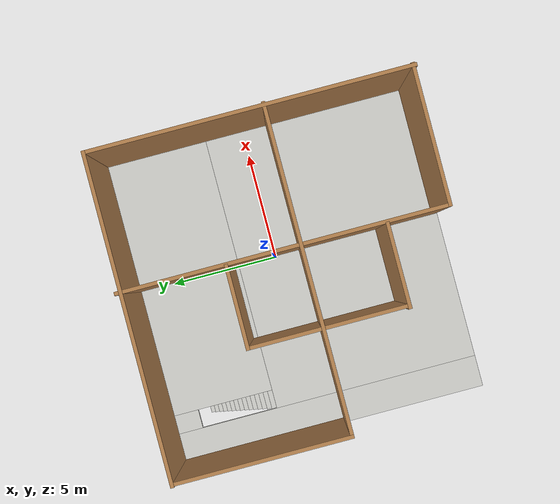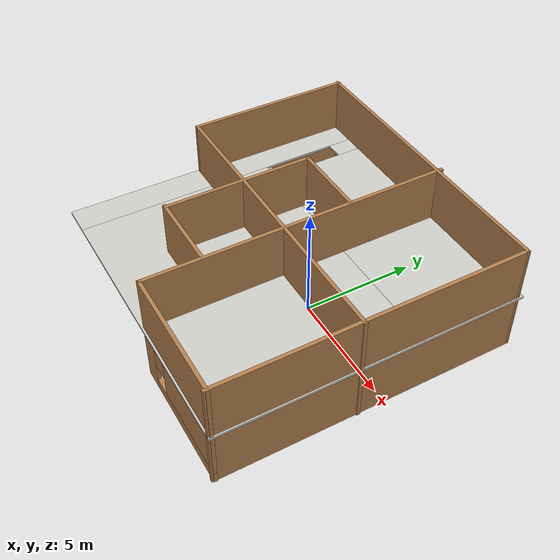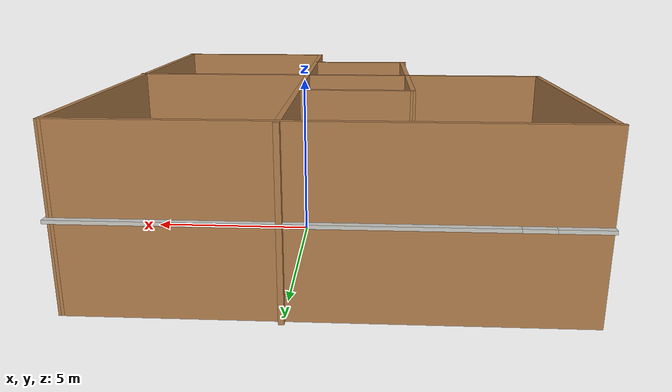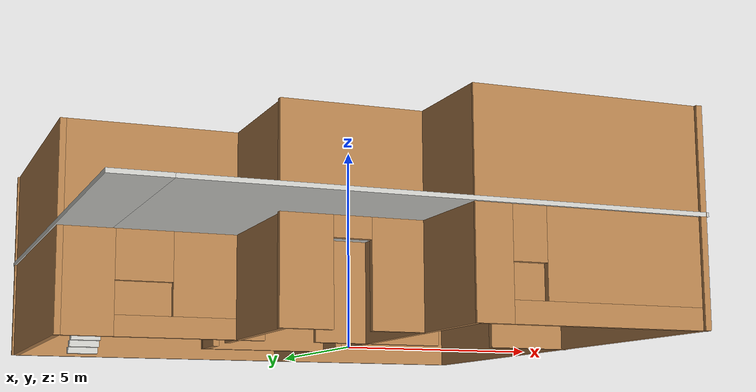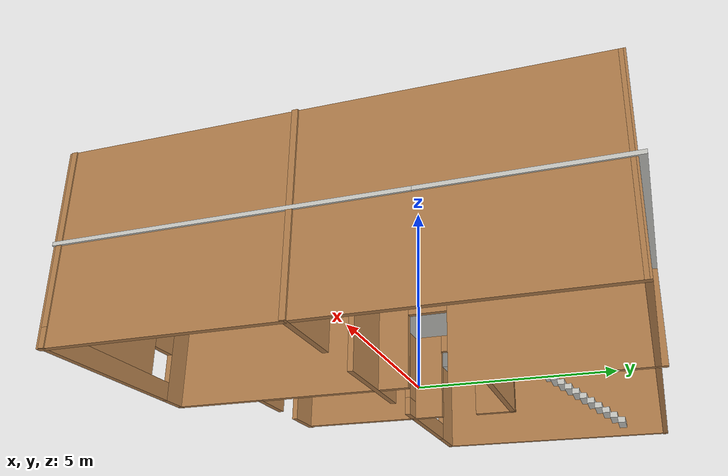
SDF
<?xml version='1.0'?>
<sdf version='1.6'>
  <model name='Robot_house'>
    <pose frame=''>-1.00803 -0.489118 0 0 -0 0</pose>
    <link name='Floor_1'>
      <pose frame=''>0 -0 2.5 0 -0 0</pose>
      <visual name='Floor_1_Visual_0'>
        <pose frame=''>-5.98538 0 0.05 0 -0 0</pose>
        <geometry>
          <box>
            <size>1.32498 13.3668 0.1</size>
          </box>
        </geometry>
        <material>
          <script>
            <uri>file://media/materials/scripts/gazebo.material</uri>
            <name>Gazebo/CeilingTiled</name>
          </script>
          <ambient>1 0.764706 0.305882 1</ambient>
        </material>
        <meta>
          <layer>1</layer>
        </meta>
      </visual>
      <collision name='Floor_1_Collision_0'>
        <geometry>
          <box>
            <size>1.32498 13.3668 0.1</size>
          </box>
        </geometry>
        <pose frame=''>-5.98538 0 0.05 0 -0 0</pose>
      </collision>
      <visual name='Floor_1_Visual_1'>
        <pose frame=''>0.662488 -2.31264 0.05 0 -0 0</pose>
        <geometry>
          <box>
            <size>11.9708 8.74149 0.1</size>
          </box>
        </geometry>
        <material>
          <script>
            <uri>file://media/materials/scripts/gazebo.material</uri>
            <name>Gazebo/CeilingTiled</name>
          </script>
          <ambient>1 0.764706 0.305882 1</ambient>
        </material>
        <meta>
          <layer>1</layer>
        </meta>
      </visual>
      <collision name='Floor_1_Collision_1'>
        <geometry>
          <box>
            <size>11.9708 8.74149 0.1</size>
          </box>
        </geometry>
        <pose frame=''>0.662488 -2.31264 0.05 0 -0 0</pose>
      </collision>
      <visual name='Floor_1_Visual_2'>
        <pose frame=''>1.06249 4.37075 0.05 0 -0 0</pose>
        <geometry>
          <box>
            <size>11.1708 4.62529 0.1</size>
          </box>
        </geometry>
        <material>
          <script>
            <uri>file://media/materials/scripts/gazebo.material</uri>
            <name>Gazebo/CeilingTiled</name>
          </script>
          <ambient>1 0.764706 0.305882 1</ambient>
        </material>
        <meta>
          <layer>1</layer>
        </meta>
      </visual>
      <collision name='Floor_1_Collision_2'>
        <geometry>
          <box>
            <size>11.1708 4.62529 0.1</size>
          </box>
        </geometry>
        <pose frame=''>1.06249 4.37075 0.05 0 -0 0</pose>
      </collision>
      <visual name='Floor_1_Visual_3'>
        <pose frame=''>-4.92289 6.00075 0.05 0 -0 0</pose>
        <geometry>
          <box>
            <size>0.8 1.36529 0.1</size>
          </box>
        </geometry>
        <material>
          <script>
            <uri>file://media/materials/scripts/gazebo.material</uri>
            <name>Gazebo/CeilingTiled</name>
          </script>
          <ambient>1 0.764706 0.305882 1</ambient>
        </material>
        <meta>
          <layer>1</layer>
        </meta>
      </visual>
      <collision name='Floor_1_Collision_3'>
        <geometry>
          <box>
            <size>0.8 1.36529 0.1</size>
          </box>
        </geometry>
        <pose frame=''>-4.92289 6.00075 0.05 0 -0 0</pose>
      </collision>
    </link>
    <link name='Stairs_3'>
      <visual name='Stairs_3_Visual_0'>
        <pose frame=''>-4.92289 5.20944 0.083333 0 -0 0</pose>
        <geometry>
          <box>
            <size>0.8 0.217333 0.166667</size>
          </box>
        </geometry>
        <material>
          <script>
            <uri>file://media/materials/scripts/gazebo.material</uri>
            <name>Gazebo/CeilingTiled</name>
          </script>
          <ambient>0.996078 0.47451 0.0196078 1</ambient>
        </material>
        <meta>
          <layer>0</layer>
        </meta>
      </visual>
      <collision name='Stairs_3_Collision_0'>
        <geometry>
          <box>
            <size>0.8 0.217333 0.166667</size>
          </box>
        </geometry>
        <pose frame=''>-4.92289 5.20944 0.083333 0 -0 0</pose>
      </collision>
      <visual name='Stairs_3_Visual_1'>
        <pose frame=''>-4.92289 4.9921 0.25 0 -0 0</pose>
        <geometry>
          <box>
            <size>0.8 0.217333 0.166667</size>
          </box>
        </geometry>
        <material>
          <script>
            <uri>file://media/materials/scripts/gazebo.material</uri>
            <name>Gazebo/CeilingTiled</name>
          </script>
          <ambient>0.996078 0.47451 0.0196078 1</ambient>
        </material>
        <meta>
          <layer>0</layer>
        </meta>
      </visual>
      <collision name='Stairs_3_Collision_1'>
        <geometry>
          <box>
            <size>0.8 0.217333 0.166667</size>
          </box>
        </geometry>
        <pose frame=''>-4.92289 4.9921 0.25 0 -0 0</pose>
      </collision>
      <visual name='Stairs_3_Visual_2'>
        <pose frame=''>-4.92289 4.77477 0.416667 0 -0 0</pose>
        <geometry>
          <box>
            <size>0.8 0.217333 0.166667</size>
          </box>
        </geometry>
        <material>
          <script>
            <uri>file://media/materials/scripts/gazebo.material</uri>
            <name>Gazebo/CeilingTiled</name>
          </script>
          <ambient>0.996078 0.47451 0.0196078 1</ambient>
        </material>
        <meta>
          <layer>0</layer>
        </meta>
      </visual>
      <collision name='Stairs_3_Collision_2'>
        <geometry>
          <box>
            <size>0.8 0.217333 0.166667</size>
          </box>
        </geometry>
        <pose frame=''>-4.92289 4.77477 0.416667 0 -0 0</pose>
      </collision>
      <visual name='Stairs_3_Visual_3'>
        <pose frame=''>-4.92289 4.55744 0.583333 0 -0 0</pose>
        <geometry>
          <box>
            <size>0.8 0.217333 0.166667</size>
          </box>
        </geometry>
        <material>
          <script>
            <uri>file://media/materials/scripts/gazebo.material</uri>
            <name>Gazebo/CeilingTiled</name>
          </script>
          <ambient>0.996078 0.47451 0.0196078 1</ambient>
        </material>
        <meta>
          <layer>0</layer>
        </meta>
      </visual>
      <collision name='Stairs_3_Collision_3'>
        <geometry>
          <box>
            <size>0.8 0.217333 0.166667</size>
          </box>
        </geometry>
        <pose frame=''>-4.92289 4.55744 0.583333 0 -0 0</pose>
      </collision>
      <visual name='Stairs_3_Visual_4'>
        <pose frame=''>-4.92289 4.3401 0.75 0 -0 0</pose>
        <geometry>
          <box>
            <size>0.8 0.217333 0.166667</size>
          </box>
        </geometry>
        <material>
          <script>
            <uri>file://media/materials/scripts/gazebo.material</uri>
            <name>Gazebo/CeilingTiled</name>
          </script>
          <ambient>0.996078 0.47451 0.0196078 1</ambient>
        </material>
        <meta>
          <layer>0</layer>
        </meta>
      </visual>
      <collision name='Stairs_3_Collision_4'>
        <geometry>
          <box>
            <size>0.8 0.217333 0.166667</size>
          </box>
        </geometry>
        <pose frame=''>-4.92289 4.3401 0.75 0 -0 0</pose>
      </collision>
      <visual name='Stairs_3_Visual_5'>
        <pose frame=''>-4.92289 4.12277 0.916667 0 -0 0</pose>
        <geometry>
          <box>
            <size>0.8 0.217333 0.166667</size>
          </box>
        </geometry>
        <material>
          <script>
            <uri>file://media/materials/scripts/gazebo.material</uri>
            <name>Gazebo/CeilingTiled</name>
          </script>
          <ambient>0.996078 0.47451 0.0196078 1</ambient>
        </material>
        <meta>
          <layer>0</layer>
        </meta>
      </visual>
      <collision name='Stairs_3_Collision_5'>
        <geometry>
          <box>
            <size>0.8 0.217333 0.166667</size>
          </box>
        </geometry>
        <pose frame=''>-4.92289 4.12277 0.916667 0 -0 0</pose>
      </collision>
      <visual name='Stairs_3_Visual_6'>
        <pose frame=''>-4.92289 3.90544 1.08333 0 -0 0</pose>
        <geometry>
          <box>
            <size>0.8 0.217333 0.166667</size>
          </box>
        </geometry>
        <material>
          <script>
            <uri>file://media/materials/scripts/gazebo.material</uri>
            <name>Gazebo/CeilingTiled</name>
          </script>
          <ambient>0.996078 0.47451 0.0196078 1</ambient>
        </material>
        <meta>
          <layer>0</layer>
        </meta>
      </visual>
      <collision name='Stairs_3_Collision_6'>
        <geometry>
          <box>
            <size>0.8 0.217333 0.166667</size>
          </box>
        </geometry>
        <pose frame=''>-4.92289 3.90544 1.08333 0 -0 0</pose>
      </collision>
      <visual name='Stairs_3_Visual_7'>
        <pose frame=''>-4.92289 3.6881 1.25 0 -0 0</pose>
        <geometry>
          <box>
            <size>0.8 0.217333 0.166667</size>
          </box>
        </geometry>
        <material>
          <script>
            <uri>file://media/materials/scripts/gazebo.material</uri>
            <name>Gazebo/CeilingTiled</name>
          </script>
          <ambient>0.996078 0.47451 0.0196078 1</ambient>
        </material>
        <meta>
          <layer>0</layer>
        </meta>
      </visual>
      <collision name='Stairs_3_Collision_7'>
        <geometry>
          <box>
            <size>0.8 0.217333 0.166667</size>
          </box>
        </geometry>
        <pose frame=''>-4.92289 3.6881 1.25 0 -0 0</pose>
      </collision>
      <visual name='Stairs_3_Visual_8'>
        <pose frame=''>-4.92289 3.47077 1.41667 0 -0 0</pose>
        <geometry>
          <box>
            <size>0.8 0.217333 0.166667</size>
          </box>
        </geometry>
        <material>
          <script>
            <uri>file://media/materials/scripts/gazebo.material</uri>
            <name>Gazebo/CeilingTiled</name>
          </script>
          <ambient>0.996078 0.47451 0.0196078 1</ambient>
        </material>
        <meta>
          <layer>0</layer>
        </meta>
      </visual>
      <collision name='Stairs_3_Collision_8'>
        <geometry>
          <box>
            <size>0.8 0.217333 0.166667</size>
          </box>
        </geometry>
        <pose frame=''>-4.92289 3.47077 1.41667 0 -0 0</pose>
      </collision>
      <visual name='Stairs_3_Visual_9'>
        <pose frame=''>-4.92289 3.25344 1.58333 0 -0 0</pose>
        <geometry>
          <box>
            <size>0.8 0.217333 0.166667</size>
          </box>
        </geometry>
        <material>
          <script>
            <uri>file://media/materials/scripts/gazebo.material</uri>
            <name>Gazebo/CeilingTiled</name>
          </script>
          <ambient>0.996078 0.47451 0.0196078 1</ambient>
        </material>
        <meta>
          <layer>0</layer>
        </meta>
      </visual>
      <collision name='Stairs_3_Collision_9'>
        <geometry>
          <box>
            <size>0.8 0.217333 0.166667</size>
          </box>
        </geometry>
        <pose frame=''>-4.92289 3.25344 1.58333 0 -0 0</pose>
      </collision>
      <visual name='Stairs_3_Visual_10'>
        <pose frame=''>-4.92289 3.0361 1.75 0 -0 0</pose>
        <geometry>
          <box>
            <size>0.8 0.217333 0.166667</size>
          </box>
        </geometry>
        <material>
          <script>
            <uri>file://media/materials/scripts/gazebo.material</uri>
            <name>Gazebo/CeilingTiled</name>
          </script>
          <ambient>0.996078 0.47451 0.0196078 1</ambient>
        </material>
        <meta>
          <layer>0</layer>
        </meta>
      </visual>
      <collision name='Stairs_3_Collision_10'>
        <geometry>
          <box>
            <size>0.8 0.217333 0.166667</size>
          </box>
        </geometry>
        <pose frame=''>-4.92289 3.0361 1.75 0 -0 0</pose>
      </collision>
      <visual name='Stairs_3_Visual_11'>
        <pose frame=''>-4.92289 2.81877 1.91667 0 -0 0</pose>
        <geometry>
          <box>
            <size>0.8 0.217333 0.166667</size>
          </box>
        </geometry>
        <material>
          <script>
            <uri>file://media/materials/scripts/gazebo.material</uri>
            <name>Gazebo/CeilingTiled</name>
          </script>
          <ambient>0.996078 0.47451 0.0196078 1</ambient>
        </material>
        <meta>
          <layer>0</layer>
        </meta>
      </visual>
      <collision name='Stairs_3_Collision_11'>
        <geometry>
          <box>
            <size>0.8 0.217333 0.166667</size>
          </box>
        </geometry>
        <pose frame=''>-4.92289 2.81877 1.91667 0 -0 0</pose>
      </collision>
      <visual name='Stairs_3_Visual_12'>
        <pose frame=''>-4.92289 2.60143 2.08333 0 -0 0</pose>
        <geometry>
          <box>
            <size>0.8 0.217333 0.166667</size>
          </box>
        </geometry>
        <material>
          <script>
            <uri>file://media/materials/scripts/gazebo.material</uri>
            <name>Gazebo/CeilingTiled</name>
          </script>
          <ambient>0.996078 0.47451 0.0196078 1</ambient>
        </material>
        <meta>
          <layer>0</layer>
        </meta>
      </visual>
      <collision name='Stairs_3_Collision_12'>
        <geometry>
          <box>
            <size>0.8 0.217333 0.166667</size>
          </box>
        </geometry>
        <pose frame=''>-4.92289 2.60143 2.08333 0 -0 0</pose>
      </collision>
      <visual name='Stairs_3_Visual_13'>
        <pose frame=''>-4.92289 2.3841 2.25 0 -0 0</pose>
        <geometry>
          <box>
            <size>0.8 0.217333 0.166667</size>
          </box>
        </geometry>
        <material>
          <script>
            <uri>file://media/materials/scripts/gazebo.material</uri>
            <name>Gazebo/CeilingTiled</name>
          </script>
          <ambient>0.996078 0.47451 0.0196078 1</ambient>
        </material>
        <meta>
          <layer>0</layer>
        </meta>
      </visual>
      <collision name='Stairs_3_Collision_13'>
        <geometry>
          <box>
            <size>0.8 0.217333 0.166667</size>
          </box>
        </geometry>
        <pose frame=''>-4.92289 2.3841 2.25 0 -0 0</pose>
      </collision>
      <visual name='Stairs_3_Visual_14'>
        <pose frame=''>-4.92289 2.16677 2.41667 0 -0 0</pose>
        <geometry>
          <box>
            <size>0.8 0.217333 0.166667</size>
          </box>
        </geometry>
        <material>
          <script>
            <uri>file://media/materials/scripts/gazebo.material</uri>
            <name>Gazebo/CeilingTiled</name>
          </script>
          <ambient>0.996078 0.47451 0.0196078 1</ambient>
        </material>
        <meta>
          <layer>0</layer>
        </meta>
      </visual>
      <collision name='Stairs_3_Collision_14'>
        <geometry>
          <box>
            <size>0.8 0.217333 0.166667</size>
          </box>
        </geometry>
        <pose frame=''>-4.92289 2.16677 2.41667 0 -0 0</pose>
      </collision>
    </link>
    <link name='Wall_14'>
      <collision name='Wall_14_Collision'>
        <geometry>
          <box>
            <size>13.25 0.15 2.5</size>
          </box>
        </geometry>
        <pose frame=''>0 0 1.25 0 -0 0</pose>
      </collision>
      <visual name='Wall_14_Visual'>
        <pose frame=''>0 0 1.25 0 -0 0</pose>
        <geometry>
          <box>
            <size>13.25 0.15 2.5</size>
          </box>
        </geometry>
        <material>
          <script>
            <uri>file://media/materials/scripts/gazebo.material</uri>
            <name>Gazebo/Wood</name>
          </script>
          <ambient>1 1 1 1</ambient>
        </material>
        <meta>
          <layer>0</layer>
        </meta>
      </visual>
      <pose frame=''>-0.02287 6.43858 0 0 -0 0</pose>
    </link>
    <link name='Wall_15'>
      <collision name='Wall_15_Collision'>
        <geometry>
          <box>
            <size>13.1969 0.15 2.5</size>
          </box>
        </geometry>
        <pose frame=''>0 0 1.25 0 -0 0</pose>
      </collision>
      <visual name='Wall_15_Visual'>
        <pose frame=''>0 0 1.25 0 -0 0</pose>
        <geometry>
          <box>
            <size>13.1969 0.15 2.5</size>
          </box>
        </geometry>
        <material>
          <script>
            <uri>file://media/materials/scripts/gazebo.material</uri>
            <name>Gazebo/Wood</name>
          </script>
          <ambient>1 1 1 1</ambient>
        </material>
        <meta>
          <layer>0</layer>
        </meta>
      </visual>
      <pose frame=''>6.51938 -0.084857 0 0 -0 -1.57198</pose>
    </link>
    <link name='Wall_18'>
      <collision name='Wall_18_Collision'>
        <geometry>
          <box>
            <size>7.25 0.15 2.5</size>
          </box>
        </geometry>
        <pose frame=''>0 0 1.25 0 -0 0</pose>
      </collision>
      <visual name='Wall_18_Visual'>
        <pose frame=''>0 0 1.25 0 -0 0</pose>
        <geometry>
          <box>
            <size>7.25 0.15 2.5</size>
          </box>
        </geometry>
        <material>
          <script>
            <uri>file://media/materials/scripts/gazebo.material</uri>
            <name>Gazebo/Wood</name>
          </script>
          <ambient>1 1 1 1</ambient>
        </material>
        <meta>
          <layer>0</layer>
        </meta>
      </visual>
      <pose frame=''>-6.52713 2.88858 0 0 -0 -1.5708</pose>
    </link>
    <link name='Wall_44'>
      <pose frame=''>-0.696815 -4.04534 0 0 -0 0.000539</pose>
      <visual name='Wall_44_Visual_0'>
        <pose frame=''>-1.09719 0 1.25 0 -0 0</pose>
        <geometry>
          <box>
            <size>1.23419 0.15 2.5</size>
          </box>
        </geometry>
        <material>
          <script>
            <uri>file://media/materials/scripts/gazebo.material</uri>
            <name>Gazebo/Wood</name>
          </script>
          <ambient>1 1 1 1</ambient>
        </material>
        <meta>
          <layer>0</layer>
        </meta>
      </visual>
      <collision name='Wall_44_Collision_0'>
        <geometry>
          <box>
            <size>1.23419 0.15 2.5</size>
          </box>
        </geometry>
        <pose frame=''>-1.09719 0 1.25 0 -0 0</pose>
      </collision>
      <visual name='Wall_44_Visual_1'>
        <pose frame=''>1.0671 0 1.25 0 -0 0</pose>
        <geometry>
          <box>
            <size>1.29437 0.15 2.5</size>
          </box>
        </geometry>
        <material>
          <script>
            <uri>file://media/materials/scripts/gazebo.material</uri>
            <name>Gazebo/Wood</name>
          </script>
          <ambient>1 1 1 1</ambient>
        </material>
        <meta>
          <layer>0</layer>
        </meta>
      </visual>
      <collision name='Wall_44_Collision_1'>
        <geometry>
          <box>
            <size>1.29437 0.15 2.5</size>
          </box>
        </geometry>
        <pose frame=''>1.0671 0 1.25 0 -0 0</pose>
      </collision>
      <visual name='Wall_44_Visual_2'>
        <pose frame=''>-0.030088 0 2.25 0 -0 0</pose>
        <geometry>
          <box>
            <size>0.9 0.15 0.5</size>
          </box>
        </geometry>
        <material>
          <script>
            <uri>file://media/materials/scripts/gazebo.material</uri>
            <name>Gazebo/Wood</name>
          </script>
          <ambient>1 1 1 1</ambient>
        </material>
        <meta>
          <layer>0</layer>
        </meta>
      </visual>
      <collision name='Wall_44_Collision_2'>
        <geometry>
          <box>
            <size>0.9 0.15 0.5</size>
          </box>
        </geometry>
        <pose frame=''>-0.030088 0 2.25 0 -0 0</pose>
      </collision>
    </link>
    <link name='Wall_50'>
      <pose frame=''>0.02287 -0.661415 0 0 -0 0</pose>
      <visual name='Wall_50_Visual_0'>
        <pose frame=''>-5.94713 0 1.25 0 -0 0</pose>
        <geometry>
          <box>
            <size>1.35573 0.15 2.5</size>
          </box>
        </geometry>
        <material>
          <script>
            <uri>file://media/materials/scripts/gazebo.material</uri>
            <name>Gazebo/Wood</name>
          </script>
          <ambient>1 1 1 1</ambient>
        </material>
        <meta>
          <layer>0</layer>
        </meta>
      </visual>
      <collision name='Wall_50_Collision_0'>
        <geometry>
          <box>
            <size>1.35573 0.15 2.5</size>
          </box>
        </geometry>
        <pose frame=''>-5.94713 0 1.25 0 -0 0</pose>
      </collision>
      <visual name='Wall_50_Visual_1'>
        <pose frame=''>1.26673 0 1.25 0 -0 0</pose>
        <geometry>
          <box>
            <size>3.27159 0.15 2.5</size>
          </box>
        </geometry>
        <material>
          <script>
            <uri>file://media/materials/scripts/gazebo.material</uri>
            <name>Gazebo/Wood</name>
          </script>
          <ambient>1 1 1 1</ambient>
        </material>
        <meta>
          <layer>0</layer>
        </meta>
      </visual>
      <collision name='Wall_50_Collision_1'>
        <geometry>
          <box>
            <size>3.27159 0.15 2.5</size>
          </box>
        </geometry>
        <pose frame=''>1.26673 0 1.25 0 -0 0</pose>
      </collision>
      <visual name='Wall_50_Visual_2'>
        <pose frame=''>5.51118 0 1.25 0 -0 0</pose>
        <geometry>
          <box>
            <size>2.22764 0.15 2.5</size>
          </box>
        </geometry>
        <material>
          <script>
            <uri>file://media/materials/scripts/gazebo.material</uri>
            <name>Gazebo/Wood</name>
          </script>
          <ambient>1 1 1 1</ambient>
        </material>
        <meta>
          <layer>0</layer>
        </meta>
      </visual>
      <collision name='Wall_50_Collision_2'>
        <geometry>
          <box>
            <size>2.22764 0.15 2.5</size>
          </box>
        </geometry>
        <pose frame=''>5.51118 0 1.25 0 -0 0</pose>
      </collision>
      <visual name='Wall_50_Visual_3'>
        <pose frame=''>-3.45566 0 0.25 0 -0 0</pose>
        <geometry>
          <box>
            <size>3.6272 0.15 0.5</size>
          </box>
        </geometry>
        <material>
          <script>
            <uri>file://media/materials/scripts/gazebo.material</uri>
            <name>Gazebo/Wood</name>
          </script>
          <ambient>1 1 1 1</ambient>
        </material>
        <meta>
          <layer>0</layer>
        </meta>
      </visual>
      <collision name='Wall_50_Collision_3'>
        <geometry>
          <box>
            <size>3.6272 0.15 0.5</size>
          </box>
        </geometry>
        <pose frame=''>-3.45566 0 0.25 0 -0 0</pose>
      </collision>
      <visual name='Wall_50_Visual_4'>
        <pose frame=''>-2.76833 0 1.5 0 -0 0</pose>
        <geometry>
          <box>
            <size>2.25253 0.15 2</size>
          </box>
        </geometry>
        <material>
          <script>
            <uri>file://media/materials/scripts/gazebo.material</uri>
            <name>Gazebo/Wood</name>
          </script>
          <ambient>1 1 1 1</ambient>
        </material>
        <meta>
          <layer>0</layer>
        </meta>
      </visual>
      <collision name='Wall_50_Collision_4'>
        <geometry>
          <box>
            <size>2.25253 0.15 2</size>
          </box>
        </geometry>
        <pose frame=''>-2.76833 0 1.5 0 -0 0</pose>
      </collision>
      <visual name='Wall_50_Visual_5'>
        <pose frame=''>-4.58193 0 1.9 0 -0 0</pose>
        <geometry>
          <box>
            <size>1.37467 0.15 1.2</size>
          </box>
        </geometry>
        <material>
          <script>
            <uri>file://media/materials/scripts/gazebo.material</uri>
            <name>Gazebo/Wood</name>
          </script>
          <ambient>1 1 1 1</ambient>
        </material>
        <meta>
          <layer>0</layer>
        </meta>
      </visual>
      <collision name='Wall_50_Collision_5'>
        <geometry>
          <box>
            <size>1.37467 0.15 1.2</size>
          </box>
        </geometry>
        <pose frame=''>-4.58193 0 1.9 0 -0 0</pose>
      </collision>
      <visual name='Wall_50_Visual_6'>
        <pose frame=''>3.64994 0 2.25 0 -0 0</pose>
        <geometry>
          <box>
            <size>1.49483 0.15 0.5</size>
          </box>
        </geometry>
        <material>
          <script>
            <uri>file://media/materials/scripts/gazebo.material</uri>
            <name>Gazebo/Wood</name>
          </script>
          <ambient>1 1 1 1</ambient>
        </material>
        <meta>
          <layer>0</layer>
        </meta>
      </visual>
      <collision name='Wall_50_Collision_6'>
        <geometry>
          <box>
            <size>1.49483 0.15 0.5</size>
          </box>
        </geometry>
        <pose frame=''>3.64994 0 2.25 0 -0 0</pose>
      </collision>
      <visual name='Wall_50_Visual_7'>
        <pose frame=''>-1.00556 0 2.25 0 -0 0</pose>
        <geometry>
          <box>
            <size>1.273 0.15 0.5</size>
          </box>
        </geometry>
        <material>
          <script>
            <uri>file://media/materials/scripts/gazebo.material</uri>
            <name>Gazebo/Wood</name>
          </script>
          <ambient>1 1 1 1</ambient>
        </material>
        <meta>
          <layer>0</layer>
        </meta>
      </visual>
      <collision name='Wall_50_Collision_7'>
        <geometry>
          <box>
            <size>1.273 0.15 0.5</size>
          </box>
        </geometry>
        <pose frame=''>-1.00556 0 2.25 0 -0 0</pose>
      </collision>
    </link>
    <link name='Wall_52'>
      <pose frame=''>3.78893 -6.527 0 0 -0 -0.001805</pose>
      <visual name='Wall_52_Visual_0'>
        <pose frame=''>-2.39477 0 1.25 0 -0 0</pose>
        <geometry>
          <box>
            <size>0.869221 0.15 2.5</size>
          </box>
        </geometry>
        <material>
          <script>
            <uri>file://media/materials/scripts/gazebo.material</uri>
            <name>Gazebo/Wood</name>
          </script>
          <ambient>1 1 1 1</ambient>
        </material>
        <meta>
          <layer>0</layer>
        </meta>
      </visual>
      <collision name='Wall_52_Collision_0'>
        <geometry>
          <box>
            <size>0.869221 0.15 2.5</size>
          </box>
        </geometry>
        <pose frame=''>-2.39477 0 1.25 0 -0 0</pose>
      </collision>
      <visual name='Wall_52_Visual_1'>
        <pose frame=''>0.43461 0 0.25 0 -0 0</pose>
        <geometry>
          <box>
            <size>4.78954 0.15 0.5</size>
          </box>
        </geometry>
        <material>
          <script>
            <uri>file://media/materials/scripts/gazebo.material</uri>
            <name>Gazebo/Wood</name>
          </script>
          <ambient>1 1 1 1</ambient>
        </material>
        <meta>
          <layer>0</layer>
        </meta>
      </visual>
      <collision name='Wall_52_Collision_1'>
        <geometry>
          <box>
            <size>4.78954 0.15 0.5</size>
          </box>
        </geometry>
        <pose frame=''>0.43461 0 0.25 0 -0 0</pose>
      </collision>
      <visual name='Wall_52_Visual_2'>
        <pose frame=''>0.83461 0 1.5 0 -0 0</pose>
        <geometry>
          <box>
            <size>3.98954 0.15 2</size>
          </box>
        </geometry>
        <material>
          <script>
            <uri>file://media/materials/scripts/gazebo.material</uri>
            <name>Gazebo/Wood</name>
          </script>
          <ambient>1 1 1 1</ambient>
        </material>
        <meta>
          <layer>0</layer>
        </meta>
      </visual>
      <collision name='Wall_52_Collision_2'>
        <geometry>
          <box>
            <size>3.98954 0.15 2</size>
          </box>
        </geometry>
        <pose frame=''>0.83461 0 1.5 0 -0 0</pose>
      </collision>
      <visual name='Wall_52_Visual_3'>
        <pose frame=''>-1.56016 0 1.9 0 -0 0</pose>
        <geometry>
          <box>
            <size>0.8 0.15 1.2</size>
          </box>
        </geometry>
        <material>
          <script>
            <uri>file://media/materials/scripts/gazebo.material</uri>
            <name>Gazebo/Wood</name>
          </script>
          <ambient>1 1 1 1</ambient>
        </material>
        <meta>
          <layer>0</layer>
        </meta>
      </visual>
      <collision name='Wall_52_Collision_3'>
        <geometry>
          <box>
            <size>0.8 0.15 1.2</size>
          </box>
        </geometry>
        <pose frame=''>-1.56016 0 1.9 0 -0 0</pose>
      </collision>
    </link>
    <link name='Wall_54'>
      <pose frame=''>1.03456 0.058388 0 0 -0 -1.5708</pose>
      <visual name='Wall_54_Visual_0'>
        <pose frame=''>-3.92871 0 1.25 0 -0 0</pose>
        <geometry>
          <box>
            <size>5.39258 0.15 2.5</size>
          </box>
        </geometry>
        <material>
          <script>
            <uri>file://media/materials/scripts/gazebo.material</uri>
            <name>Gazebo/Wood</name>
          </script>
          <ambient>1 1 1 1</ambient>
        </material>
        <meta>
          <layer>0</layer>
        </meta>
      </visual>
      <collision name='Wall_54_Collision_0'>
        <geometry>
          <box>
            <size>5.39258 0.15 2.5</size>
          </box>
        </geometry>
        <pose frame=''>-3.92871 0 1.25 0 -0 0</pose>
      </collision>
      <visual name='Wall_54_Visual_1'>
        <pose frame=''>3.22745 0 1.25 0 -0 0</pose>
        <geometry>
          <box>
            <size>6.79511 0.15 2.5</size>
          </box>
        </geometry>
        <material>
          <script>
            <uri>file://media/materials/scripts/gazebo.material</uri>
            <name>Gazebo/Wood</name>
          </script>
          <ambient>1 1 1 1</ambient>
        </material>
        <meta>
          <layer>0</layer>
        </meta>
      </visual>
      <collision name='Wall_54_Collision_1'>
        <geometry>
          <box>
            <size>6.79511 0.15 2.5</size>
          </box>
        </geometry>
        <pose frame=''>3.22745 0 1.25 0 -0 0</pose>
      </collision>
      <visual name='Wall_54_Visual_2'>
        <pose frame=''>-0.701264 0 2.25 0 -0 0</pose>
        <geometry>
          <box>
            <size>1.06232 0.15 0.5</size>
          </box>
        </geometry>
        <material>
          <script>
            <uri>file://media/materials/scripts/gazebo.material</uri>
            <name>Gazebo/Wood</name>
          </script>
          <ambient>1 1 1 1</ambient>
        </material>
        <meta>
          <layer>0</layer>
        </meta>
      </visual>
      <collision name='Wall_54_Collision_2'>
        <geometry>
          <box>
            <size>1.06232 0.15 0.5</size>
          </box>
        </geometry>
        <pose frame=''>-0.701264 0 2.25 0 -0 0</pose>
      </collision>
    </link>
    <link name='Wall_56'>
      <pose frame=''>-2.26883 -0.861929 0 0 -0 -1.5708</pose>
      <visual name='Wall_56_Visual_0'>
        <pose frame=''>-2.67731 0 1.25 0 -0 0</pose>
        <geometry>
          <box>
            <size>1.14537 0.15 2.5</size>
          </box>
        </geometry>
        <material>
          <script>
            <uri>file://media/materials/scripts/gazebo.material</uri>
            <name>Gazebo/Wood</name>
          </script>
          <ambient>1 1 1 1</ambient>
        </material>
        <meta>
          <layer>0</layer>
        </meta>
      </visual>
      <collision name='Wall_56_Collision_0'>
        <geometry>
          <box>
            <size>1.14537 0.15 2.5</size>
          </box>
        </geometry>
        <pose frame=''>-2.67731 0 1.25 0 -0 0</pose>
      </collision>
      <visual name='Wall_56_Visual_1'>
        <pose frame=''>1.08069 0 1.25 0 -0 0</pose>
        <geometry>
          <box>
            <size>4.33863 0.15 2.5</size>
          </box>
        </geometry>
        <material>
          <script>
            <uri>file://media/materials/scripts/gazebo.material</uri>
            <name>Gazebo/Wood</name>
          </script>
          <ambient>1 1 1 1</ambient>
        </material>
        <meta>
          <layer>0</layer>
        </meta>
      </visual>
      <collision name='Wall_56_Collision_1'>
        <geometry>
          <box>
            <size>4.33863 0.15 2.5</size>
          </box>
        </geometry>
        <pose frame=''>1.08069 0 1.25 0 -0 0</pose>
      </collision>
      <visual name='Wall_56_Visual_2'>
        <pose frame=''>-1.59663 0 2.25 0 -0 0</pose>
        <geometry>
          <box>
            <size>1.016 0.15 0.5</size>
          </box>
        </geometry>
        <material>
          <script>
            <uri>file://media/materials/scripts/gazebo.material</uri>
            <name>Gazebo/Wood</name>
          </script>
          <ambient>1 1 1 1</ambient>
        </material>
        <meta>
          <layer>0</layer>
        </meta>
      </visual>
      <collision name='Wall_56_Collision_2'>
        <geometry>
          <box>
            <size>1.016 0.15 0.5</size>
          </box>
        </geometry>
        <pose frame=''>-1.59663 0 2.25 0 -0 0</pose>
      </collision>
    </link>
    <link name='Wall_68'>
      <collision name='Wall_68_Collision'>
        <geometry>
          <box>
            <size>3.38789 0.15 2.5</size>
          </box>
        </geometry>
        <pose frame=''>0 0 1.25 0 -0 0</pose>
      </collision>
      <visual name='Wall_68_Visual'>
        <pose frame=''>0 0 1.25 0 -0 0</pose>
        <geometry>
          <box>
            <size>3.38789 0.15 2.5</size>
          </box>
        </geometry>
        <material>
          <script>
            <uri>file://media/materials/scripts/gazebo.material</uri>
            <name>Gazebo/Wood</name>
          </script>
          <ambient>1 1 1 1</ambient>
        </material>
        <meta>
          <layer>1</layer>
        </meta>
      </visual>
      <pose frame=''>-0.6499 2.30559 2.5 0 -0 -0.004618</pose>
    </link>
    <link name='Wall_69'>
      <collision name='Wall_69_Collision'>
        <geometry>
          <box>
            <size>13.25 0.15 2.5</size>
          </box>
        </geometry>
        <pose frame=''>0 0 1.25 0 -0 0</pose>
      </collision>
      <visual name='Wall_69_Visual'>
        <pose frame=''>0 0 1.25 0 -0 0</pose>
        <geometry>
          <box>
            <size>13.25 0.15 2.5</size>
          </box>
        </geometry>
        <material>
          <script>
            <uri>file://media/materials/scripts/gazebo.material</uri>
            <name>Gazebo/Wood</name>
          </script>
          <ambient>1 1 1 1</ambient>
        </material>
        <meta>
          <layer>1</layer>
        </meta>
      </visual>
      <pose frame=''>-0.02287 6.43858 2.5 0 -0 0</pose>
    </link>
    <link name='Wall_7'>
      <collision name='Wall_7_Collision'>
        <geometry>
          <box>
            <size>3.38789 0.15 2.5</size>
          </box>
        </geometry>
        <pose frame=''>0 0 1.25 0 -0 0</pose>
      </collision>
      <visual name='Wall_7_Visual'>
        <pose frame=''>0 0 1.25 0 -0 0</pose>
        <geometry>
          <box>
            <size>3.38789 0.15 2.5</size>
          </box>
        </geometry>
        <material>
          <script>
            <uri>file://media/materials/scripts/gazebo.material</uri>
            <name>Gazebo/Wood</name>
          </script>
          <ambient>1 1 1 1</ambient>
        </material>
        <meta>
          <layer>0</layer>
        </meta>
      </visual>
      <pose frame=''>-0.6499 2.30559 0 0 -0 -0.004618</pose>
    </link>
    <link name='Wall_70'>
      <collision name='Wall_70_Collision'>
        <geometry>
          <box>
            <size>13.1969 0.15 2.5</size>
          </box>
        </geometry>
        <pose frame=''>0 0 1.25 0 -0 0</pose>
      </collision>
      <visual name='Wall_70_Visual'>
        <pose frame=''>0 0 1.25 0 -0 0</pose>
        <geometry>
          <box>
            <size>13.1969 0.15 2.5</size>
          </box>
        </geometry>
        <material>
          <script>
            <uri>file://media/materials/scripts/gazebo.material</uri>
            <name>Gazebo/Wood</name>
          </script>
          <ambient>1 1 1 1</ambient>
        </material>
        <meta>
          <layer>1</layer>
        </meta>
      </visual>
      <pose frame=''>6.51938 -0.084857 2.5 0 -0 -1.57198</pose>
    </link>
    <link name='Wall_71'>
      <collision name='Wall_71_Collision'>
        <geometry>
          <box>
            <size>7.25 0.15 2.5</size>
          </box>
        </geometry>
        <pose frame=''>0 0 1.25 0 -0 0</pose>
      </collision>
      <visual name='Wall_71_Visual'>
        <pose frame=''>0 0 1.25 0 -0 0</pose>
        <geometry>
          <box>
            <size>7.25 0.15 2.5</size>
          </box>
        </geometry>
        <material>
          <script>
            <uri>file://media/materials/scripts/gazebo.material</uri>
            <name>Gazebo/Wood</name>
          </script>
          <ambient>1 1 1 1</ambient>
        </material>
        <meta>
          <layer>1</layer>
        </meta>
      </visual>
      <pose frame=''>-6.52713 2.88858 2.5 0 -0 -1.5708</pose>
    </link>
    <link name='Wall_72'>
      <collision name='Wall_72_Collision'>
        <geometry>
          <box>
            <size>3.42856 0.15 2.5</size>
          </box>
        </geometry>
        <pose frame=''>0 0 1.25 0 -0 0</pose>
      </collision>
      <visual name='Wall_72_Visual'>
        <pose frame=''>0 0 1.25 0 -0 0</pose>
        <geometry>
          <box>
            <size>3.42856 0.15 2.5</size>
          </box>
        </geometry>
        <material>
          <script>
            <uri>file://media/materials/scripts/gazebo.material</uri>
            <name>Gazebo/Wood</name>
          </script>
          <ambient>1 1 1 1</ambient>
        </material>
        <meta>
          <layer>1</layer>
        </meta>
      </visual>
      <pose frame=''>-0.696815 -4.04534 2.5 0 -0 0.000539</pose>
    </link>
    <link name='Wall_73'>
      <collision name='Wall_73_Collision'>
        <geometry>
          <box>
            <size>13.25 0.15 2.5</size>
          </box>
        </geometry>
        <pose frame=''>0 0 1.25 0 -0 0</pose>
      </collision>
      <visual name='Wall_73_Visual'>
        <pose frame=''>0 0 1.25 0 -0 0</pose>
        <geometry>
          <box>
            <size>13.25 0.15 2.5</size>
          </box>
        </geometry>
        <material>
          <script>
            <uri>file://media/materials/scripts/gazebo.material</uri>
            <name>Gazebo/Wood</name>
          </script>
          <ambient>1 1 1 1</ambient>
        </material>
        <meta>
          <layer>1</layer>
        </meta>
      </visual>
      <pose frame=''>0.02287 -0.661415 2.5 0 -0 0</pose>
    </link>
    <link name='Wall_74'>
      <collision name='Wall_74_Collision'>
        <geometry>
          <box>
            <size>5.65876 0.15 2.5</size>
          </box>
        </geometry>
        <pose frame=''>0 0 1.25 0 -0 0</pose>
      </collision>
      <visual name='Wall_74_Visual'>
        <pose frame=''>0 0 1.25 0 -0 0</pose>
        <geometry>
          <box>
            <size>5.65876 0.15 2.5</size>
          </box>
        </geometry>
        <material>
          <script>
            <uri>file://media/materials/scripts/gazebo.material</uri>
            <name>Gazebo/Wood</name>
          </script>
          <ambient>1 1 1 1</ambient>
        </material>
        <meta>
          <layer>1</layer>
        </meta>
      </visual>
      <pose frame=''>3.78893 -6.527 2.5 0 -0 -0.001805</pose>
    </link>
    <link name='Wall_75'>
      <collision name='Wall_75_Collision'>
        <geometry>
          <box>
            <size>13.25 0.15 2.5</size>
          </box>
        </geometry>
        <pose frame=''>0 0 1.25 0 -0 0</pose>
      </collision>
      <visual name='Wall_75_Visual'>
        <pose frame=''>0 0 1.25 0 -0 0</pose>
        <geometry>
          <box>
            <size>13.25 0.15 2.5</size>
          </box>
        </geometry>
        <material>
          <script>
            <uri>file://media/materials/scripts/gazebo.material</uri>
            <name>Gazebo/Wood</name>
          </script>
          <ambient>1 1 1 1</ambient>
        </material>
        <meta>
          <layer>1</layer>
        </meta>
      </visual>
      <pose frame=''>1.03456 0.058388 2.5 0 -0 -1.5708</pose>
    </link>
    <link name='Wall_76'>
      <collision name='Wall_76_Collision'>
        <geometry>
          <box>
            <size>6.5 0.15 2.5</size>
          </box>
        </geometry>
        <pose frame=''>0 0 1.25 0 -0 0</pose>
      </collision>
      <visual name='Wall_76_Visual'>
        <pose frame=''>0 0 1.25 0 -0 0</pose>
        <geometry>
          <box>
            <size>6.5 0.15 2.5</size>
          </box>
        </geometry>
        <material>
          <script>
            <uri>file://media/materials/scripts/gazebo.material</uri>
            <name>Gazebo/Wood</name>
          </script>
          <ambient>1 1 1 1</ambient>
        </material>
        <meta>
          <layer>1</layer>
        </meta>
      </visual>
      <pose frame=''>-2.26883 -0.861929 2.5 0 -0 -1.5708</pose>
    </link>
    <static>1</static>
  </model>
</sdf>
